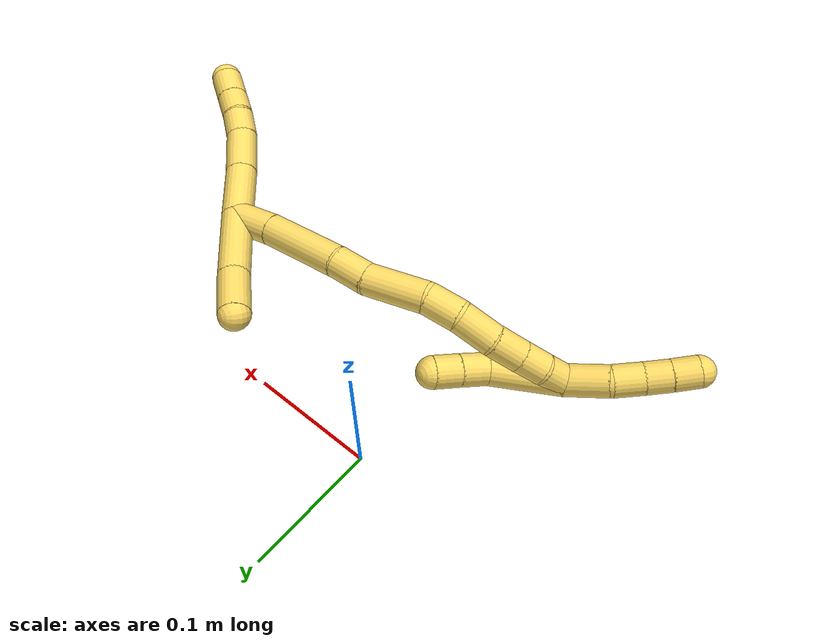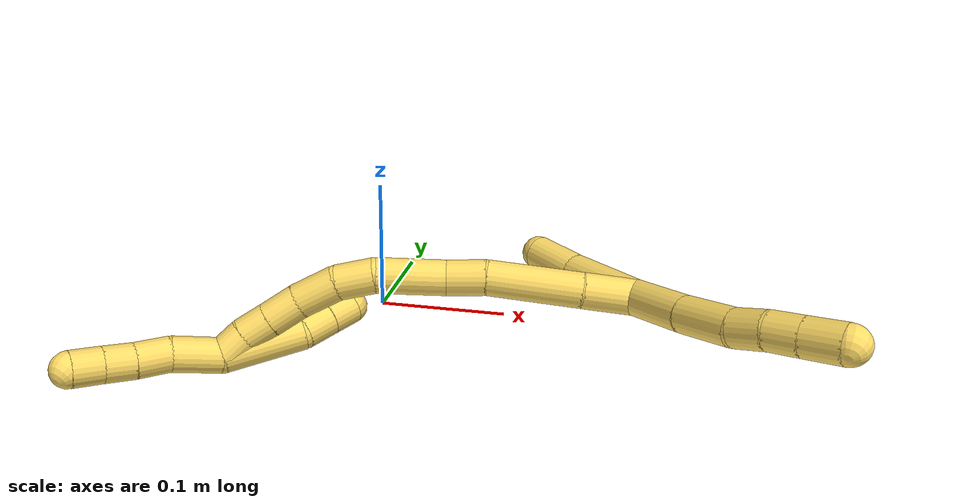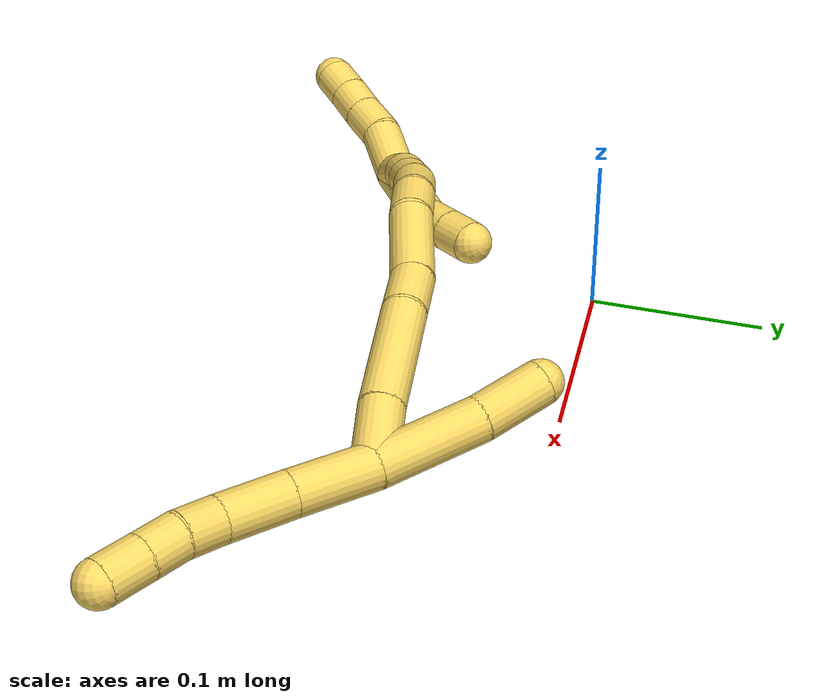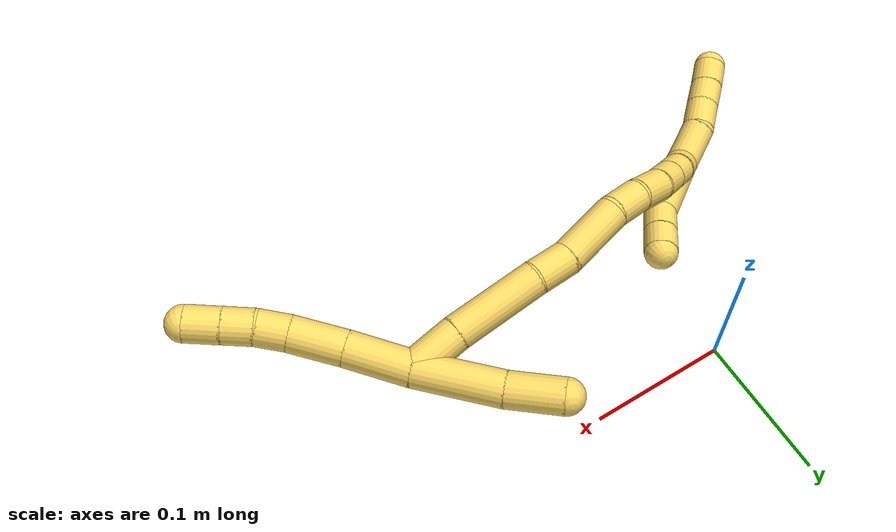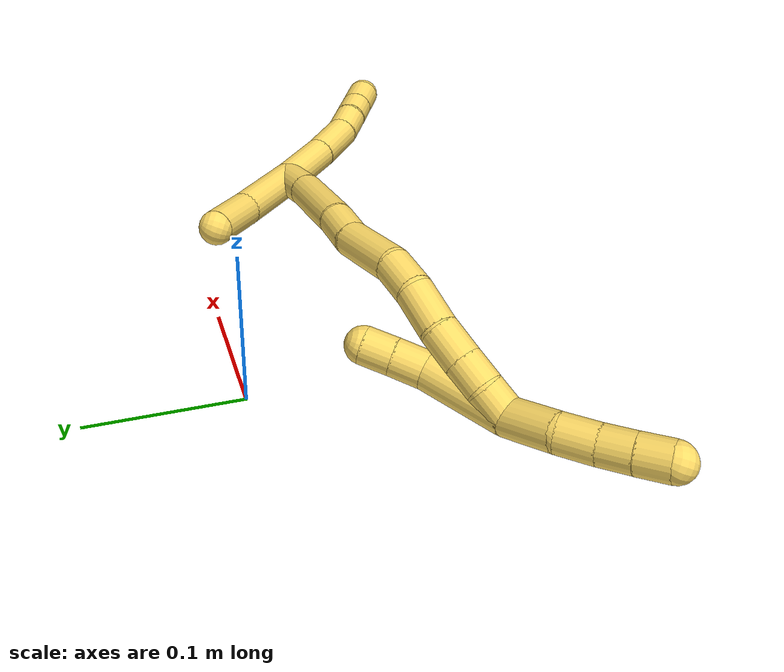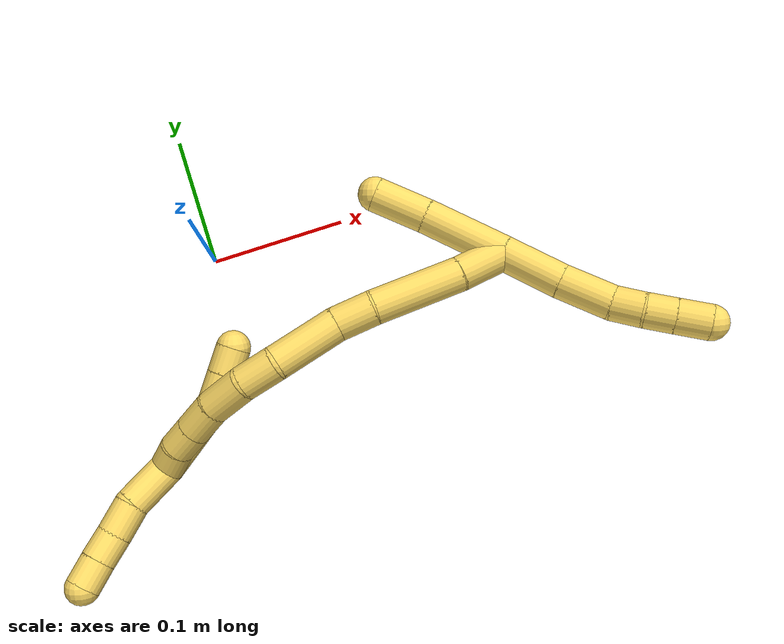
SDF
<sdf version="1.7">
 <world name="default">
  <model name="5">
   <static>0</static>
   <link name="5">
    <collision name="collision-cylinder-e_1_2_8">
     <pose>0.019995 -0.003841 -0.010067 2.77713 1.07654 2.54289</pose>
     <geometry><cylinder><radius>0.0125</radius><length>0.045426</length></cylinder></geometry>
     <surface>
      <friction><ode><mu>1.16</mu><mu2>1.16</mu2><slip1>0</slip1><slip2>0</slip2></ode></friction>
      <contact><ode><kp>1e+06</kp><kd>1</kd><max_vel>0</max_vel><min_depth>0.001</min_depth></ode></contact>
     </surface>
    </collision>
    <visual name="visual-cylinder-e_1_2_8">
     <pose>0.019995 -0.003841 -0.010067 2.77713 1.07654 2.54289</pose>
     <geometry><cylinder><radius>0.0125</radius><length>0.045426</length></cylinder></geometry>
     <material><ambient>1 0.858824 0.4 1</ambient></material>
    </visual>
    <collision name="collision-cylinder-e_2_8_9">
     <pose>0.057253 -0.011037 -0.027551 2.71667 1.13015 2.48572</pose>
     <geometry><cylinder><radius>0.0125</radius><length>0.038174</length></cylinder></geometry>
     <surface>
      <friction><ode><mu>1.16</mu><mu2>1.16</mu2><slip1>0</slip1><slip2>0</slip2></ode></friction>
      <contact><ode><kp>1e+06</kp><kd>1</kd><max_vel>0</max_vel><min_depth>0.001</min_depth></ode></contact>
     </surface>
    </collision>
    <visual name="visual-cylinder-e_2_8_9">
     <pose>0.057253 -0.011037 -0.027551 2.71667 1.13015 2.48572</pose>
     <geometry><cylinder><radius>0.0125</radius><length>0.038174</length></cylinder></geometry>
     <material><ambient>1 0.858824 0.4 1</ambient></material>
    </visual>
    <collision name="collision-cylinder-e_3_9_10">
     <pose>0.084965 -0.016864 -0.037229 2.31185 1.26055 2.05529</pose>
     <geometry><cylinder><radius>0.0125</radius><length>0.021943</length></cylinder></geometry>
     <surface>
      <friction><ode><mu>1.16</mu><mu2>1.16</mu2><slip1>0</slip1><slip2>0</slip2></ode></friction>
      <contact><ode><kp>1e+06</kp><kd>1</kd><max_vel>0</max_vel><min_depth>0.001</min_depth></ode></contact>
     </surface>
    </collision>
    <visual name="visual-cylinder-e_3_9_10">
     <pose>0.084965 -0.016864 -0.037229 2.31185 1.26055 2.05529</pose>
     <geometry><cylinder><radius>0.0125</radius><length>0.021943</length></cylinder></geometry>
     <material><ambient>1 0.858824 0.4 1</ambient></material>
    </visual>
    <collision name="collision-cylinder-e_4_10_11">
     <pose>0.105534 -0.020094 -0.041543 2.78749 1.35787 2.70517</pose>
     <geometry><cylinder><radius>0.0125</radius><length>0.02071</length></cylinder></geometry>
     <surface>
      <friction><ode><mu>1.16</mu><mu2>1.16</mu2><slip1>0</slip1><slip2>0</slip2></ode></friction>
      <contact><ode><kp>1e+06</kp><kd>1</kd><max_vel>0</max_vel><min_depth>0.001</min_depth></ode></contact>
     </surface>
    </collision>
    <visual name="visual-cylinder-e_4_10_11">
     <pose>0.105534 -0.020094 -0.041543 2.78749 1.35787 2.70517</pose>
     <geometry><cylinder><radius>0.0125</radius><length>0.02071</length></cylinder></geometry>
     <material><ambient>1 0.858824 0.4 1</ambient></material>
    </visual>
    <collision name="collision-cylinder-e_5_11_6">
     <pose>0.127262 -0.021813 -0.045903 2.74733 1.3587 2.65669</pose>
     <geometry><cylinder><radius>0.0125</radius><length>0.023747</length></cylinder></geometry>
     <surface>
      <friction><ode><mu>1.16</mu><mu2>1.16</mu2><slip1>0</slip1><slip2>0</slip2></ode></friction>
      <contact><ode><kp>1e+06</kp><kd>1</kd><max_vel>0</max_vel><min_depth>0.001</min_depth></ode></contact>
     </surface>
    </collision>
    <visual name="visual-cylinder-e_5_11_6">
     <pose>0.127262 -0.021813 -0.045903 2.74733 1.3587 2.65669</pose>
     <geometry><cylinder><radius>0.0125</radius><length>0.023747</length></cylinder></geometry>
     <material><ambient>1 0.858824 0.4 1</ambient></material>
    </visual>
    <collision name="collision-cylinder-e_1_2_12">
     <pose>-0.027176 0.002097 0.013649 -0.152434 -1.10066 0.09364</pose>
     <geometry><cylinder><radius>0.0125</radius><length>0.060967</length></cylinder></geometry>
     <surface>
      <friction><ode><mu>1.16</mu><mu2>1.16</mu2><slip1>0</slip1><slip2>0</slip2></ode></friction>
      <contact><ode><kp>1e+06</kp><kd>1</kd><max_vel>0</max_vel><min_depth>0.001</min_depth></ode></contact>
     </surface>
    </collision>
    <visual name="visual-cylinder-e_1_2_12">
     <pose>-0.027176 0.002097 0.013649 -0.152434 -1.10066 0.09364</pose>
     <geometry><cylinder><radius>0.0125</radius><length>0.060967</length></cylinder></geometry>
     <material><ambient>1 0.858824 0.4 1</ambient></material>
    </visual>
    <collision name="collision-cylinder-e_2_12_5">
     <pose>-0.071993 0.003316 0.035601 0.105352 -1.12874 -0.06673</pose>
     <geometry><cylinder><radius>0.0125</radius><length>0.039033</length></cylinder></geometry>
     <surface>
      <friction><ode><mu>1.16</mu><mu2>1.16</mu2><slip1>0</slip1><slip2>0</slip2></ode></friction>
      <contact><ode><kp>1e+06</kp><kd>1</kd><max_vel>0</max_vel><min_depth>0.001</min_depth></ode></contact>
     </surface>
    </collision>
    <visual name="visual-cylinder-e_2_12_5">
     <pose>-0.071993 0.003316 0.035601 0.105352 -1.12874 -0.06673</pose>
     <geometry><cylinder><radius>0.0125</radius><length>0.039033</length></cylinder></geometry>
     <material><ambient>1 0.858824 0.4 1</ambient></material>
    </visual>
    <collision name="collision-cylinder-e_1_2_13">
     <pose>-0.015287 -0.007267 -0.006182 2.27566 -1.01283 -1.75212</pose>
     <geometry><cylinder><radius>0.0125</radius><length>0.03604</length></cylinder></geometry>
     <surface>
      <friction><ode><mu>1.16</mu><mu2>1.16</mu2><slip1>0</slip1><slip2>0</slip2></ode></friction>
      <contact><ode><kp>1e+06</kp><kd>1</kd><max_vel>0</max_vel><min_depth>0.001</min_depth></ode></contact>
     </surface>
    </collision>
    <visual name="visual-cylinder-e_1_2_13">
     <pose>-0.015287 -0.007267 -0.006182 2.27566 -1.01283 -1.75212</pose>
     <geometry><cylinder><radius>0.0125</radius><length>0.03604</length></cylinder></geometry>
     <material><ambient>1 0.858824 0.4 1</ambient></material>
    </visual>
    <collision name="collision-cylinder-e_2_13_14">
     <pose>-0.059595 -0.026034 -0.021623 2.2487 -1.10019 -1.81601</pose>
     <geometry><cylinder><radius>0.0125</radius><length>0.065122</length></cylinder></geometry>
     <surface>
      <friction><ode><mu>1.16</mu><mu2>1.16</mu2><slip1>0</slip1><slip2>0</slip2></ode></friction>
      <contact><ode><kp>1e+06</kp><kd>1</kd><max_vel>0</max_vel><min_depth>0.001</min_depth></ode></contact>
     </surface>
    </collision>
    <visual name="visual-cylinder-e_2_13_14">
     <pose>-0.059595 -0.026034 -0.021623 2.2487 -1.10019 -1.81601</pose>
     <geometry><cylinder><radius>0.0125</radius><length>0.065122</length></cylinder></geometry>
     <material><ambient>1 0.858824 0.4 1</ambient></material>
    </visual>
    <collision name="collision-cylinder-e_3_14_15">
     <pose>-0.101292 -0.040729 -0.035885 2.57313 -1.13288 -2.28036</pose>
     <geometry><cylinder><radius>0.0125</radius><length>0.027994</length></cylinder></geometry>
     <surface>
      <friction><ode><mu>1.16</mu><mu2>1.16</mu2><slip1>0</slip1><slip2>0</slip2></ode></friction>
      <contact><ode><kp>1e+06</kp><kd>1</kd><max_vel>0</max_vel><min_depth>0.001</min_depth></ode></contact>
     </surface>
    </collision>
    <visual name="visual-cylinder-e_3_14_15">
     <pose>-0.101292 -0.040729 -0.035885 2.57313 -1.13288 -2.28036</pose>
     <geometry><cylinder><radius>0.0125</radius><length>0.027994</length></cylinder></geometry>
     <material><ambient>1 0.858824 0.4 1</ambient></material>
    </visual>
    <collision name="collision-cylinder-e_4_15_16">
     <pose>-0.133656 -0.053189 -0.052081 2.45022 -0.934968 -1.90221</pose>
     <geometry><cylinder><radius>0.0125</radius><length>0.048938</length></cylinder></geometry>
     <surface>
      <friction><ode><mu>1.16</mu><mu2>1.16</mu2><slip1>0</slip1><slip2>0</slip2></ode></friction>
      <contact><ode><kp>1e+06</kp><kd>1</kd><max_vel>0</max_vel><min_depth>0.001</min_depth></ode></contact>
     </surface>
    </collision>
    <visual name="visual-cylinder-e_4_15_16">
     <pose>-0.133656 -0.053189 -0.052081 2.45022 -0.934968 -1.90221</pose>
     <geometry><cylinder><radius>0.0125</radius><length>0.048938</length></cylinder></geometry>
     <material><ambient>1 0.858824 0.4 1</ambient></material>
    </visual>
    <collision name="collision-cylinder-e_5_16_17">
     <pose>-0.164816 -0.063972 -0.069897 2.9162 -1.03616 -2.7496</pose>
     <geometry><cylinder><radius>0.0125</radius><length>0.026668</length></cylinder></geometry>
     <surface>
      <friction><ode><mu>1.16</mu><mu2>1.16</mu2><slip1>0</slip1><slip2>0</slip2></ode></friction>
      <contact><ode><kp>1e+06</kp><kd>1</kd><max_vel>0</max_vel><min_depth>0.001</min_depth></ode></contact>
     </surface>
    </collision>
    <visual name="visual-cylinder-e_5_16_17">
     <pose>-0.164816 -0.063972 -0.069897 2.9162 -1.03616 -2.7496</pose>
     <geometry><cylinder><radius>0.0125</radius><length>0.026668</length></cylinder></geometry>
     <material><ambient>1 0.858824 0.4 1</ambient></material>
    </visual>
    <collision name="collision-cylinder-e_6_17_18">
     <pose>-0.188337 -0.063734 -0.085322 -2.94467 -0.930419 2.75298</pose>
     <geometry><cylinder><radius>0.0125</radius><length>0.030048</length></cylinder></geometry>
     <surface>
      <friction><ode><mu>1.16</mu><mu2>1.16</mu2><slip1>0</slip1><slip2>0</slip2></ode></friction>
      <contact><ode><kp>1e+06</kp><kd>1</kd><max_vel>0</max_vel><min_depth>0.001</min_depth></ode></contact>
     </surface>
    </collision>
    <visual name="visual-cylinder-e_6_17_18">
     <pose>-0.188337 -0.063734 -0.085322 -2.94467 -0.930419 2.75298</pose>
     <geometry><cylinder><radius>0.0125</radius><length>0.030048</length></cylinder></geometry>
     <material><ambient>1 0.858824 0.4 1</ambient></material>
    </visual>
    <collision name="collision-cylinder-e_7_18_19">
     <pose>-0.208705 -0.06016 -0.102682 -2.93223 -0.760441 2.62748</pose>
     <geometry><cylinder><radius>0.0125</radius><length>0.024145</length></cylinder></geometry>
     <surface>
      <friction><ode><mu>1.16</mu><mu2>1.16</mu2><slip1>0</slip1><slip2>0</slip2></ode></friction>
      <contact><ode><kp>1e+06</kp><kd>1</kd><max_vel>0</max_vel><min_depth>0.001</min_depth></ode></contact>
     </surface>
    </collision>
    <visual name="visual-cylinder-e_7_18_19">
     <pose>-0.208705 -0.06016 -0.102682 -2.93223 -0.760441 2.62748</pose>
     <geometry><cylinder><radius>0.0125</radius><length>0.024145</length></cylinder></geometry>
     <material><ambient>1 0.858824 0.4 1</ambient></material>
    </visual>
    <collision name="collision-cylinder-e_8_19_20">
     <pose>-0.224103 -0.056987 -0.118509 -2.95734 -0.763295 2.68906</pose>
     <geometry><cylinder><radius>0.0125</radius><length>0.020475</length></cylinder></geometry>
     <surface>
      <friction><ode><mu>1.16</mu><mu2>1.16</mu2><slip1>0</slip1><slip2>0</slip2></ode></friction>
      <contact><ode><kp>1e+06</kp><kd>1</kd><max_vel>0</max_vel><min_depth>0.001</min_depth></ode></contact>
     </surface>
    </collision>
    <visual name="visual-cylinder-e_8_19_20">
     <pose>-0.224103 -0.056987 -0.118509 -2.95734 -0.763295 2.68906</pose>
     <geometry><cylinder><radius>0.0125</radius><length>0.020475</length></cylinder></geometry>
     <material><ambient>1 0.858824 0.4 1</ambient></material>
    </visual>
    <collision name="collision-cylinder-e_9_20_1">
     <pose>-0.236756 -0.053043 -0.134028 -2.83739 -0.572899 2.18191</pose>
     <geometry><cylinder><radius>0.0125</radius><length>0.020571</length></cylinder></geometry>
     <surface>
      <friction><ode><mu>1.16</mu><mu2>1.16</mu2><slip1>0</slip1><slip2>0</slip2></ode></friction>
      <contact><ode><kp>1e+06</kp><kd>1</kd><max_vel>0</max_vel><min_depth>0.001</min_depth></ode></contact>
     </surface>
    </collision>
    <visual name="visual-cylinder-e_9_20_1">
     <pose>-0.236756 -0.053043 -0.134028 -2.83739 -0.572899 2.18191</pose>
     <geometry><cylinder><radius>0.0125</radius><length>0.020571</length></cylinder></geometry>
     <material><ambient>1 0.858824 0.4 1</ambient></material>
    </visual>
    <collision name="collision-cylinder-e_1_1_21">
     <pose>-0.252869 -0.059895 -0.152571 2.3995 -0.646279 -1.42137</pose>
     <geometry><cylinder><radius>0.0125</radius><length>0.034998</length></cylinder></geometry>
     <surface>
      <friction><ode><mu>1.16</mu><mu2>1.16</mu2><slip1>0</slip1><slip2>0</slip2></ode></friction>
      <contact><ode><kp>1e+06</kp><kd>1</kd><max_vel>0</max_vel><min_depth>0.001</min_depth></ode></contact>
     </surface>
    </collision>
    <visual name="visual-cylinder-e_1_1_21">
     <pose>-0.252869 -0.059895 -0.152571 2.3995 -0.646279 -1.42137</pose>
     <geometry><cylinder><radius>0.0125</radius><length>0.034998</length></cylinder></geometry>
     <material><ambient>1 0.858824 0.4 1</ambient></material>
    </visual>
    <collision name="collision-cylinder-e_2_21_22">
     <pose>-0.26873 -0.074696 -0.172247 2.62247 -0.457732 -1.44017</pose>
     <geometry><cylinder><radius>0.0125</radius><length>0.024085</length></cylinder></geometry>
     <surface>
      <friction><ode><mu>1.16</mu><mu2>1.16</mu2><slip1>0</slip1><slip2>0</slip2></ode></friction>
      <contact><ode><kp>1e+06</kp><kd>1</kd><max_vel>0</max_vel><min_depth>0.001</min_depth></ode></contact>
     </surface>
    </collision>
    <visual name="visual-cylinder-e_2_21_22">
     <pose>-0.26873 -0.074696 -0.172247 2.62247 -0.457732 -1.44017</pose>
     <geometry><cylinder><radius>0.0125</radius><length>0.024085</length></cylinder></geometry>
     <material><ambient>1 0.858824 0.4 1</ambient></material>
    </visual>
    <collision name="collision-cylinder-e_3_22_23">
     <pose>-0.278601 -0.085192 -0.189171 2.54391 -0.462472 -1.30516</pose>
     <geometry><cylinder><radius>0.0125</radius><length>0.020397</length></cylinder></geometry>
     <surface>
      <friction><ode><mu>1.16</mu><mu2>1.16</mu2><slip1>0</slip1><slip2>0</slip2></ode></friction>
      <contact><ode><kp>1e+06</kp><kd>1</kd><max_vel>0</max_vel><min_depth>0.001</min_depth></ode></contact>
     </surface>
    </collision>
    <visual name="visual-cylinder-e_3_22_23">
     <pose>-0.278601 -0.085192 -0.189171 2.54391 -0.462472 -1.30516</pose>
     <geometry><cylinder><radius>0.0125</radius><length>0.020397</length></cylinder></geometry>
     <material><ambient>1 0.858824 0.4 1</ambient></material>
    </visual>
    <collision name="collision-cylinder-e_4_23_4">
     <pose>-0.287382 -0.095512 -0.204494 2.5537 -0.425057 -1.23859</pose>
     <geometry><cylinder><radius>0.0125</radius><length>0.02052</length></cylinder></geometry>
     <surface>
      <friction><ode><mu>1.16</mu><mu2>1.16</mu2><slip1>0</slip1><slip2>0</slip2></ode></friction>
      <contact><ode><kp>1e+06</kp><kd>1</kd><max_vel>0</max_vel><min_depth>0.001</min_depth></ode></contact>
     </surface>
    </collision>
    <visual name="visual-cylinder-e_4_23_4">
     <pose>-0.287382 -0.095512 -0.204494 2.5537 -0.425057 -1.23859</pose>
     <geometry><cylinder><radius>0.0125</radius><length>0.02052</length></cylinder></geometry>
     <material><ambient>1 0.858824 0.4 1</ambient></material>
    </visual>
    <collision name="collision-cylinder-e_1_1_24">
     <pose>-0.225177 -0.042796 -0.12049 -0.338034 0.638925 -0.112777</pose>
     <geometry><cylinder><radius>0.0125</radius><length>0.057531</length></cylinder></geometry>
     <surface>
      <friction><ode><mu>1.16</mu><mu2>1.16</mu2><slip1>0</slip1><slip2>0</slip2></ode></friction>
      <contact><ode><kp>1e+06</kp><kd>1</kd><max_vel>0</max_vel><min_depth>0.001</min_depth></ode></contact>
     </surface>
    </collision>
    <visual name="visual-cylinder-e_1_1_24">
     <pose>-0.225177 -0.042796 -0.12049 -0.338034 0.638925 -0.112777</pose>
     <geometry><cylinder><radius>0.0125</radius><length>0.057531</length></cylinder></geometry>
     <material><ambient>1 0.858824 0.4 1</ambient></material>
    </visual>
    <collision name="collision-cylinder-e_2_24_25">
     <pose>-0.204214 -0.032872 -0.08858 -0.220189 0.351841 -0.039294</pose>
     <geometry><cylinder><radius>0.0125</radius><length>0.022105</length></cylinder></geometry>
     <surface>
      <friction><ode><mu>1.16</mu><mu2>1.16</mu2><slip1>0</slip1><slip2>0</slip2></ode></friction>
      <contact><ode><kp>1e+06</kp><kd>1</kd><max_vel>0</max_vel><min_depth>0.001</min_depth></ode></contact>
     </surface>
    </collision>
    <visual name="visual-cylinder-e_2_24_25">
     <pose>-0.204214 -0.032872 -0.08858 -0.220189 0.351841 -0.039294</pose>
     <geometry><cylinder><radius>0.0125</radius><length>0.022105</length></cylinder></geometry>
     <material><ambient>1 0.858824 0.4 1</ambient></material>
    </visual>
    <collision name="collision-cylinder-e_3_25_3">
     <pose>-0.197026 -0.028352 -0.069119 -0.236866 0.338356 -0.040644</pose>
     <geometry><cylinder><radius>0.0125</radius><length>0.020364</length></cylinder></geometry>
     <surface>
      <friction><ode><mu>1.16</mu><mu2>1.16</mu2><slip1>0</slip1><slip2>0</slip2></ode></friction>
      <contact><ode><kp>1e+06</kp><kd>1</kd><max_vel>0</max_vel><min_depth>0.001</min_depth></ode></contact>
     </surface>
    </collision>
    <visual name="visual-cylinder-e_3_25_3">
     <pose>-0.197026 -0.028352 -0.069119 -0.236866 0.338356 -0.040644</pose>
     <geometry><cylinder><radius>0.0125</radius><length>0.020364</length></cylinder></geometry>
     <material><ambient>1 0.858824 0.4 1</ambient></material>
    </visual>
    <collision name="collision-sphere-3">
     <pose>-0.193646 -0.026098 -0.059782 0 -0 0</pose>
     <geometry><sphere><radius>0.0125</radius></sphere></geometry>
     <surface>
      <friction><ode><mu>1.16</mu><mu2>1.16</mu2><slip1>0</slip1><slip2>0</slip2></ode></friction>
      <contact><ode><kp>1e+06</kp><kd>1</kd><max_vel>0</max_vel><min_depth>0.001</min_depth></ode></contact>
     </surface>
    </collision>
    <visual name="visual-sphere-3">
     <pose>-0.193646 -0.026098 -0.059782 0 -0 0</pose>
     <geometry><sphere><radius>0.0125</radius></sphere></geometry>
     <material><ambient>1 0.858824 0.4 1</ambient></material>
    </visual>
    <collision name="collision-sphere-25">
     <pose>-0.200405 -0.030606 -0.078455 0 -0 0</pose>
     <geometry><sphere><radius>0.0125</radius></sphere></geometry>
     <surface>
      <friction><ode><mu>1.16</mu><mu2>1.16</mu2><slip1>0</slip1><slip2>0</slip2></ode></friction>
      <contact><ode><kp>1e+06</kp><kd>1</kd><max_vel>0</max_vel><min_depth>0.001</min_depth></ode></contact>
     </surface>
    </collision>
    <visual name="visual-sphere-25">
     <pose>-0.200405 -0.030606 -0.078455 0 -0 0</pose>
     <geometry><sphere><radius>0.0125</radius></sphere></geometry>
     <material><ambient>1 0.858824 0.4 1</ambient></material>
    </visual>
    <collision name="collision-sphere-24">
     <pose>-0.208023 -0.035138 -0.098705 0 -0 0</pose>
     <geometry><sphere><radius>0.0125</radius></sphere></geometry>
     <surface>
      <friction><ode><mu>1.16</mu><mu2>1.16</mu2><slip1>0</slip1><slip2>0</slip2></ode></friction>
      <contact><ode><kp>1e+06</kp><kd>1</kd><max_vel>0</max_vel><min_depth>0.001</min_depth></ode></contact>
     </surface>
    </collision>
    <visual name="visual-sphere-24">
     <pose>-0.208023 -0.035138 -0.098705 0 -0 0</pose>
     <geometry><sphere><radius>0.0125</radius></sphere></geometry>
     <material><ambient>1 0.858824 0.4 1</ambient></material>
    </visual>
    <collision name="collision-sphere-4">
     <pose>-0.291613 -0.100696 -0.212272 0 -0 0</pose>
     <geometry><sphere><radius>0.0125</radius></sphere></geometry>
     <surface>
      <friction><ode><mu>1.16</mu><mu2>1.16</mu2><slip1>0</slip1><slip2>0</slip2></ode></friction>
      <contact><ode><kp>1e+06</kp><kd>1</kd><max_vel>0</max_vel><min_depth>0.001</min_depth></ode></contact>
     </surface>
    </collision>
    <visual name="visual-sphere-4">
     <pose>-0.291613 -0.100696 -0.212272 0 -0 0</pose>
     <geometry><sphere><radius>0.0125</radius></sphere></geometry>
     <material><ambient>1 0.858824 0.4 1</ambient></material>
    </visual>
    <collision name="collision-sphere-23">
     <pose>-0.283152 -0.090328 -0.196716 0 -0 0</pose>
     <geometry><sphere><radius>0.0125</radius></sphere></geometry>
     <surface>
      <friction><ode><mu>1.16</mu><mu2>1.16</mu2><slip1>0</slip1><slip2>0</slip2></ode></friction>
      <contact><ode><kp>1e+06</kp><kd>1</kd><max_vel>0</max_vel><min_depth>0.001</min_depth></ode></contact>
     </surface>
    </collision>
    <visual name="visual-sphere-23">
     <pose>-0.283152 -0.090328 -0.196716 0 -0 0</pose>
     <geometry><sphere><radius>0.0125</radius></sphere></geometry>
     <material><ambient>1 0.858824 0.4 1</ambient></material>
    </visual>
    <collision name="collision-sphere-22">
     <pose>-0.274051 -0.080056 -0.181626 0 -0 0</pose>
     <geometry><sphere><radius>0.0125</radius></sphere></geometry>
     <surface>
      <friction><ode><mu>1.16</mu><mu2>1.16</mu2><slip1>0</slip1><slip2>0</slip2></ode></friction>
      <contact><ode><kp>1e+06</kp><kd>1</kd><max_vel>0</max_vel><min_depth>0.001</min_depth></ode></contact>
     </surface>
    </collision>
    <visual name="visual-sphere-22">
     <pose>-0.274051 -0.080056 -0.181626 0 -0 0</pose>
     <geometry><sphere><radius>0.0125</radius></sphere></geometry>
     <material><ambient>1 0.858824 0.4 1</ambient></material>
    </visual>
    <collision name="collision-sphere-21">
     <pose>-0.263408 -0.069337 -0.162868 0 -0 0</pose>
     <geometry><sphere><radius>0.0125</radius></sphere></geometry>
     <surface>
      <friction><ode><mu>1.16</mu><mu2>1.16</mu2><slip1>0</slip1><slip2>0</slip2></ode></friction>
      <contact><ode><kp>1e+06</kp><kd>1</kd><max_vel>0</max_vel><min_depth>0.001</min_depth></ode></contact>
     </surface>
    </collision>
    <visual name="visual-sphere-21">
     <pose>-0.263408 -0.069337 -0.162868 0 -0 0</pose>
     <geometry><sphere><radius>0.0125</radius></sphere></geometry>
     <material><ambient>1 0.858824 0.4 1</ambient></material>
    </visual>
    <collision name="collision-sphere-1">
     <pose>-0.242331 -0.050454 -0.142274 0 -0 0</pose>
     <geometry><sphere><radius>0.0125</radius></sphere></geometry>
     <surface>
      <friction><ode><mu>1.16</mu><mu2>1.16</mu2><slip1>0</slip1><slip2>0</slip2></ode></friction>
      <contact><ode><kp>1e+06</kp><kd>1</kd><max_vel>0</max_vel><min_depth>0.001</min_depth></ode></contact>
     </surface>
    </collision>
    <visual name="visual-sphere-1">
     <pose>-0.242331 -0.050454 -0.142274 0 -0 0</pose>
     <geometry><sphere><radius>0.0125</radius></sphere></geometry>
     <material><ambient>1 0.858824 0.4 1</ambient></material>
    </visual>
    <collision name="collision-sphere-6">
     <pose>0.138869 -0.022773 -0.048211 0 -0 0</pose>
     <geometry><sphere><radius>0.0125</radius></sphere></geometry>
     <surface>
      <friction><ode><mu>1.16</mu><mu2>1.16</mu2><slip1>0</slip1><slip2>0</slip2></ode></friction>
      <contact><ode><kp>1e+06</kp><kd>1</kd><max_vel>0</max_vel><min_depth>0.001</min_depth></ode></contact>
     </surface>
    </collision>
    <visual name="visual-sphere-6">
     <pose>0.138869 -0.022773 -0.048211 0 -0 0</pose>
     <geometry><sphere><radius>0.0125</radius></sphere></geometry>
     <material><ambient>1 0.858824 0.4 1</ambient></material>
    </visual>
    <collision name="collision-sphere-11">
     <pose>0.115655 -0.020853 -0.043595 0 -0 0</pose>
     <geometry><sphere><radius>0.0125</radius></sphere></geometry>
     <surface>
      <friction><ode><mu>1.16</mu><mu2>1.16</mu2><slip1>0</slip1><slip2>0</slip2></ode></friction>
      <contact><ode><kp>1e+06</kp><kd>1</kd><max_vel>0</max_vel><min_depth>0.001</min_depth></ode></contact>
     </surface>
    </collision>
    <visual name="visual-sphere-11">
     <pose>0.115655 -0.020853 -0.043595 0 -0 0</pose>
     <geometry><sphere><radius>0.0125</radius></sphere></geometry>
     <material><ambient>1 0.858824 0.4 1</ambient></material>
    </visual>
    <collision name="collision-sphere-10">
     <pose>0.095412 -0.019336 -0.03949 0 -0 0</pose>
     <geometry><sphere><radius>0.0125</radius></sphere></geometry>
     <surface>
      <friction><ode><mu>1.16</mu><mu2>1.16</mu2><slip1>0</slip1><slip2>0</slip2></ode></friction>
      <contact><ode><kp>1e+06</kp><kd>1</kd><max_vel>0</max_vel><min_depth>0.001</min_depth></ode></contact>
     </surface>
    </collision>
    <visual name="visual-sphere-10">
     <pose>0.095412 -0.019336 -0.03949 0 -0 0</pose>
     <geometry><sphere><radius>0.0125</radius></sphere></geometry>
     <material><ambient>1 0.858824 0.4 1</ambient></material>
    </visual>
    <collision name="collision-sphere-9">
     <pose>0.074517 -0.014393 -0.034968 0 -0 0</pose>
     <geometry><sphere><radius>0.0125</radius></sphere></geometry>
     <surface>
      <friction><ode><mu>1.16</mu><mu2>1.16</mu2><slip1>0</slip1><slip2>0</slip2></ode></friction>
      <contact><ode><kp>1e+06</kp><kd>1</kd><max_vel>0</max_vel><min_depth>0.001</min_depth></ode></contact>
     </surface>
    </collision>
    <visual name="visual-sphere-9">
     <pose>0.074517 -0.014393 -0.034968 0 -0 0</pose>
     <geometry><sphere><radius>0.0125</radius></sphere></geometry>
     <material><ambient>1 0.858824 0.4 1</ambient></material>
    </visual>
    <collision name="collision-sphere-2">
     <geometry><sphere><radius>0.0125</radius></sphere></geometry>
     <surface>
      <friction><ode><mu>1.16</mu><mu2>1.16</mu2><slip1>0</slip1><slip2>0</slip2></ode></friction>
      <contact><ode><kp>1e+06</kp><kd>1</kd><max_vel>0</max_vel><min_depth>0.001</min_depth></ode></contact>
     </surface>
    </collision>
    <visual name="visual-sphere-2">
     <geometry><sphere><radius>0.0125</radius></sphere></geometry>
     <material><ambient>1 0.858824 0.4 1</ambient></material>
    </visual>
    <collision name="collision-sphere-19">
     <pose>-0.217026 -0.058342 -0.111237 0 -0 0</pose>
     <geometry><sphere><radius>0.0125</radius></sphere></geometry>
     <surface>
      <friction><ode><mu>1.16</mu><mu2>1.16</mu2><slip1>0</slip1><slip2>0</slip2></ode></friction>
      <contact><ode><kp>1e+06</kp><kd>1</kd><max_vel>0</max_vel><min_depth>0.001</min_depth></ode></contact>
     </surface>
    </collision>
    <visual name="visual-sphere-19">
     <pose>-0.217026 -0.058342 -0.111237 0 -0 0</pose>
     <geometry><sphere><radius>0.0125</radius></sphere></geometry>
     <material><ambient>1 0.858824 0.4 1</ambient></material>
    </visual>
    <collision name="collision-sphere-8">
     <pose>0.039989 -0.007681 -0.020134 0 -0 0</pose>
     <geometry><sphere><radius>0.0125</radius></sphere></geometry>
     <surface>
      <friction><ode><mu>1.16</mu><mu2>1.16</mu2><slip1>0</slip1><slip2>0</slip2></ode></friction>
      <contact><ode><kp>1e+06</kp><kd>1</kd><max_vel>0</max_vel><min_depth>0.001</min_depth></ode></contact>
     </surface>
    </collision>
    <visual name="visual-sphere-8">
     <pose>0.039989 -0.007681 -0.020134 0 -0 0</pose>
     <geometry><sphere><radius>0.0125</radius></sphere></geometry>
     <material><ambient>1 0.858824 0.4 1</ambient></material>
    </visual>
    <collision name="collision-sphere-12">
     <pose>-0.054353 0.004194 0.027298 0 -0 0</pose>
     <geometry><sphere><radius>0.0125</radius></sphere></geometry>
     <surface>
      <friction><ode><mu>1.16</mu><mu2>1.16</mu2><slip1>0</slip1><slip2>0</slip2></ode></friction>
      <contact><ode><kp>1e+06</kp><kd>1</kd><max_vel>0</max_vel><min_depth>0.001</min_depth></ode></contact>
     </surface>
    </collision>
    <visual name="visual-sphere-12">
     <pose>-0.054353 0.004194 0.027298 0 -0 0</pose>
     <geometry><sphere><radius>0.0125</radius></sphere></geometry>
     <material><ambient>1 0.858824 0.4 1</ambient></material>
    </visual>
    <collision name="collision-sphere-5">
     <pose>-0.089633 0.002438 0.043904 0 -0 0</pose>
     <geometry><sphere><radius>0.0125</radius></sphere></geometry>
     <surface>
      <friction><ode><mu>1.16</mu><mu2>1.16</mu2><slip1>0</slip1><slip2>0</slip2></ode></friction>
      <contact><ode><kp>1e+06</kp><kd>1</kd><max_vel>0</max_vel><min_depth>0.001</min_depth></ode></contact>
     </surface>
    </collision>
    <visual name="visual-sphere-5">
     <pose>-0.089633 0.002438 0.043904 0 -0 0</pose>
     <geometry><sphere><radius>0.0125</radius></sphere></geometry>
     <material><ambient>1 0.858824 0.4 1</ambient></material>
    </visual>
    <collision name="collision-sphere-13">
     <pose>-0.030574 -0.014535 -0.012364 0 -0 0</pose>
     <geometry><sphere><radius>0.0125</radius></sphere></geometry>
     <surface>
      <friction><ode><mu>1.16</mu><mu2>1.16</mu2><slip1>0</slip1><slip2>0</slip2></ode></friction>
      <contact><ode><kp>1e+06</kp><kd>1</kd><max_vel>0</max_vel><min_depth>0.001</min_depth></ode></contact>
     </surface>
    </collision>
    <visual name="visual-sphere-13">
     <pose>-0.030574 -0.014535 -0.012364 0 -0 0</pose>
     <geometry><sphere><radius>0.0125</radius></sphere></geometry>
     <material><ambient>1 0.858824 0.4 1</ambient></material>
    </visual>
    <collision name="collision-sphere-14">
     <pose>-0.088616 -0.037534 -0.030883 0 -0 0</pose>
     <geometry><sphere><radius>0.0125</radius></sphere></geometry>
     <surface>
      <friction><ode><mu>1.16</mu><mu2>1.16</mu2><slip1>0</slip1><slip2>0</slip2></ode></friction>
      <contact><ode><kp>1e+06</kp><kd>1</kd><max_vel>0</max_vel><min_depth>0.001</min_depth></ode></contact>
     </surface>
    </collision>
    <visual name="visual-sphere-14">
     <pose>-0.088616 -0.037534 -0.030883 0 -0 0</pose>
     <geometry><sphere><radius>0.0125</radius></sphere></geometry>
     <material><ambient>1 0.858824 0.4 1</ambient></material>
    </visual>
    <collision name="collision-sphere-15">
     <pose>-0.113968 -0.043924 -0.040886 0 -0 0</pose>
     <geometry><sphere><radius>0.0125</radius></sphere></geometry>
     <surface>
      <friction><ode><mu>1.16</mu><mu2>1.16</mu2><slip1>0</slip1><slip2>0</slip2></ode></friction>
      <contact><ode><kp>1e+06</kp><kd>1</kd><max_vel>0</max_vel><min_depth>0.001</min_depth></ode></contact>
     </surface>
    </collision>
    <visual name="visual-sphere-15">
     <pose>-0.113968 -0.043924 -0.040886 0 -0 0</pose>
     <geometry><sphere><radius>0.0125</radius></sphere></geometry>
     <material><ambient>1 0.858824 0.4 1</ambient></material>
    </visual>
    <collision name="collision-sphere-16">
     <pose>-0.153343 -0.062454 -0.063275 0 -0 0</pose>
     <geometry><sphere><radius>0.0125</radius></sphere></geometry>
     <surface>
      <friction><ode><mu>1.16</mu><mu2>1.16</mu2><slip1>0</slip1><slip2>0</slip2></ode></friction>
      <contact><ode><kp>1e+06</kp><kd>1</kd><max_vel>0</max_vel><min_depth>0.001</min_depth></ode></contact>
     </surface>
    </collision>
    <visual name="visual-sphere-16">
     <pose>-0.153343 -0.062454 -0.063275 0 -0 0</pose>
     <geometry><sphere><radius>0.0125</radius></sphere></geometry>
     <material><ambient>1 0.858824 0.4 1</ambient></material>
    </visual>
    <collision name="collision-sphere-17">
     <pose>-0.17629 -0.065491 -0.076519 0 -0 0</pose>
     <geometry><sphere><radius>0.0125</radius></sphere></geometry>
     <surface>
      <friction><ode><mu>1.16</mu><mu2>1.16</mu2><slip1>0</slip1><slip2>0</slip2></ode></friction>
      <contact><ode><kp>1e+06</kp><kd>1</kd><max_vel>0</max_vel><min_depth>0.001</min_depth></ode></contact>
     </surface>
    </collision>
    <visual name="visual-sphere-17">
     <pose>-0.17629 -0.065491 -0.076519 0 -0 0</pose>
     <geometry><sphere><radius>0.0125</radius></sphere></geometry>
     <material><ambient>1 0.858824 0.4 1</ambient></material>
    </visual>
    <collision name="collision-sphere-18">
     <pose>-0.200384 -0.061978 -0.094126 0 -0 0</pose>
     <geometry><sphere><radius>0.0125</radius></sphere></geometry>
     <surface>
      <friction><ode><mu>1.16</mu><mu2>1.16</mu2><slip1>0</slip1><slip2>0</slip2></ode></friction>
      <contact><ode><kp>1e+06</kp><kd>1</kd><max_vel>0</max_vel><min_depth>0.001</min_depth></ode></contact>
     </surface>
    </collision>
    <visual name="visual-sphere-18">
     <pose>-0.200384 -0.061978 -0.094126 0 -0 0</pose>
     <geometry><sphere><radius>0.0125</radius></sphere></geometry>
     <material><ambient>1 0.858824 0.4 1</ambient></material>
    </visual>
    <collision name="collision-sphere-20">
     <pose>-0.23118 -0.055632 -0.125781 0 -0 0</pose>
     <geometry><sphere><radius>0.0125</radius></sphere></geometry>
     <surface>
      <friction><ode><mu>1.16</mu><mu2>1.16</mu2><slip1>0</slip1><slip2>0</slip2></ode></friction>
      <contact><ode><kp>1e+06</kp><kd>1</kd><max_vel>0</max_vel><min_depth>0.001</min_depth></ode></contact>
     </surface>
    </collision>
    <visual name="visual-sphere-20">
     <pose>-0.23118 -0.055632 -0.125781 0 -0 0</pose>
     <geometry><sphere><radius>0.0125</radius></sphere></geometry>
     <material><ambient>1 0.858824 0.4 1</ambient></material>
    </visual>
    <inertial>
     <pose>-0.10806 -0.034712 -0.062893 0 -0 0</pose>
     <mass>0.75</mass>
     <inertia><ixx>-2.6e-05</ixx><ixy>0</ixy><ixz>0</ixz><iyy>8.6e-05</iyy><iyz>0</iyz><izz>5.3e-05</izz></inertia>
    </inertial>
   </link>
   <pose>0.199045 -0.075152 0.054284 -1.16854 -0.139164 -0.330376</pose>
  </model>
 </world>
</sdf>
